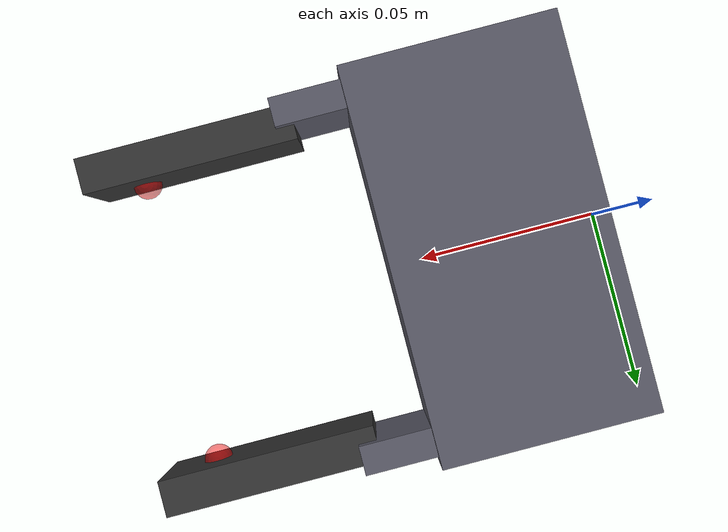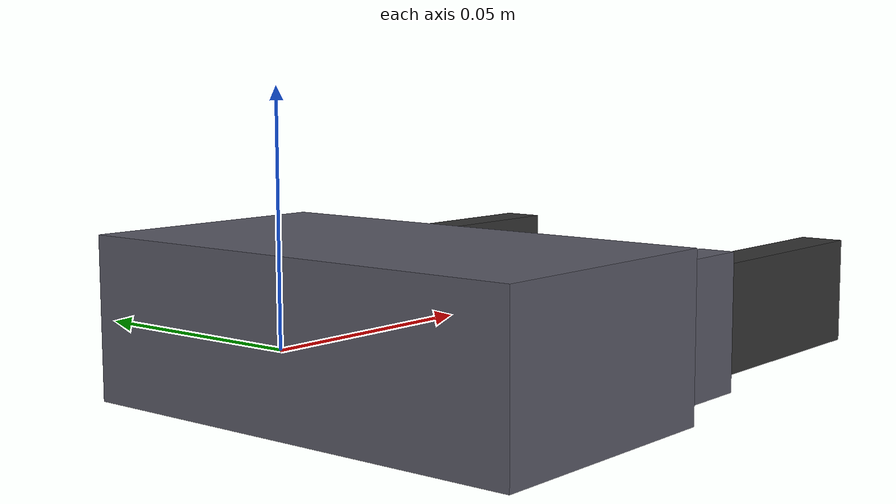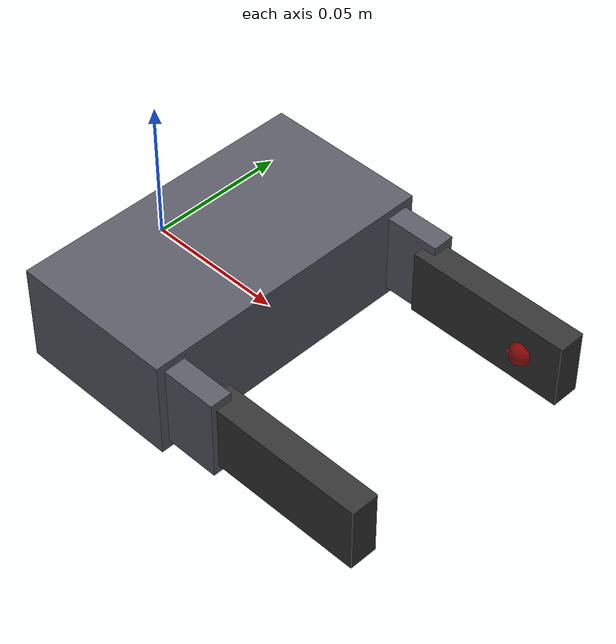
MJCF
<mujoco model="parallel_jaw">
  <compiler angle="radian" autolimits="true"/>

  <default>
    <default class="gripper">
      <joint type="slide" damping="2" armature="0.01"/>
      <geom type="box" density="1000" friction="1.0 0.01 0.001" condim="4" rgba="0.35 0.35 0.4 1"/>
      <position kp="800" kv="15" ctrlrange="0 0.04"/>
    </default>
  </default>

  <worldbody>
    <body name="hand_root" childclass="gripper" gravcomp="1">
      <freejoint name="hand_free"/>
      <geom name="base" pos="0.03 0 0" size="0.03 0.055 0.018"/>

      <body name="jaw_left" pos="0.06 0.045 0" gravcomp="1">
        <joint name="jaw_left" axis="0 -1 0" range="0 0.04"/>
        <geom name="jaw_left_link" pos="0.01 0.003 0" size="0.01 0.004 0.015"/>
        <geom name="jaw_left_pad" pos="0.045 0 0" size="0.03 0.005 0.012" rgba="0.2 0.2 0.2 1"/>
        <site name="jaw_left_tip" pos="0.06 -0.005 0" size="0.004" rgba="1 0 0 0.5"/>
      </body>

      <body name="jaw_right" pos="0.06 -0.045 0" gravcomp="1">
        <joint name="jaw_right" axis="0 1 0" range="0 0.04"/>
        <geom name="jaw_right_link" pos="0.01 -0.003 0" size="0.01 0.004 0.015"/>
        <geom name="jaw_right_pad" pos="0.045 0 0" size="0.03 0.005 0.012" rgba="0.2 0.2 0.2 1"/>
        <site name="jaw_right_tip" pos="0.06 0.005 0" size="0.004" rgba="1 0 0 0.5"/>
      </body>
    </body>
  </worldbody>

  <contact>
    <exclude body1="hand_root" body2="jaw_left"/>
    <exclude body1="hand_root" body2="jaw_right"/>
  </contact>

  <equality>
    <joint joint1="jaw_right" joint2="jaw_left" polycoef="0 1 0 0 0"/>
  </equality>

  <actuator>
    <position name="jaw" class="gripper" joint="jaw_left"/>
  </actuator>
</mujoco>
